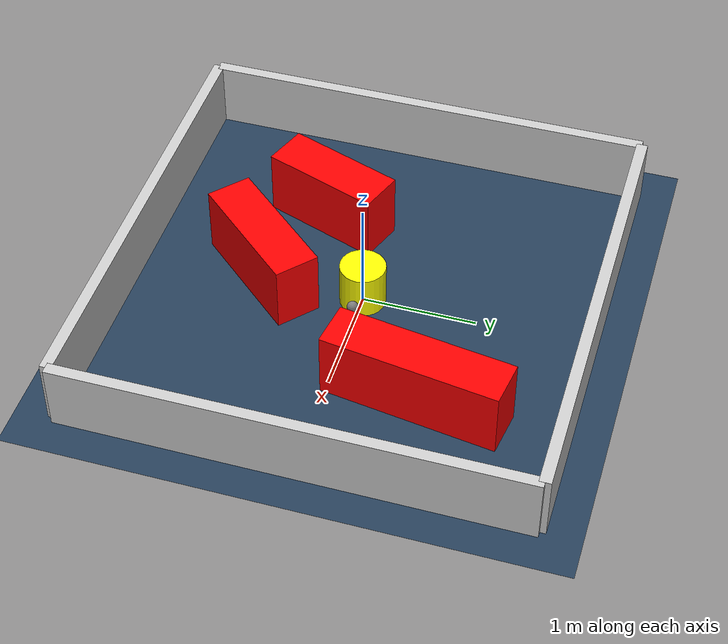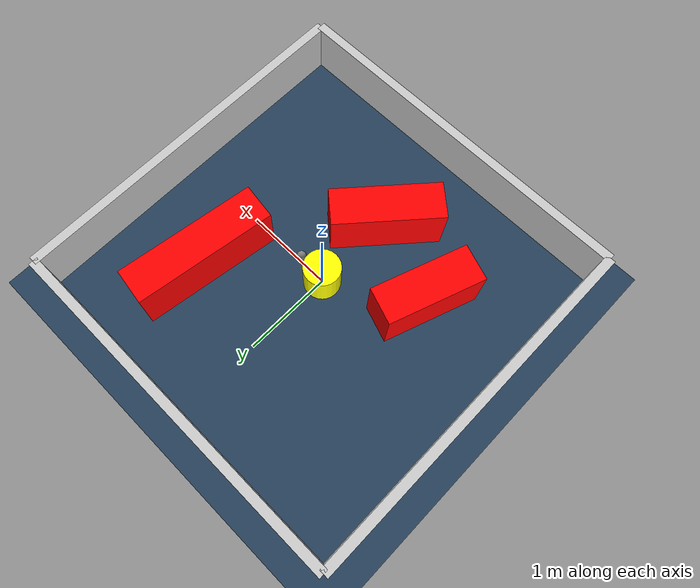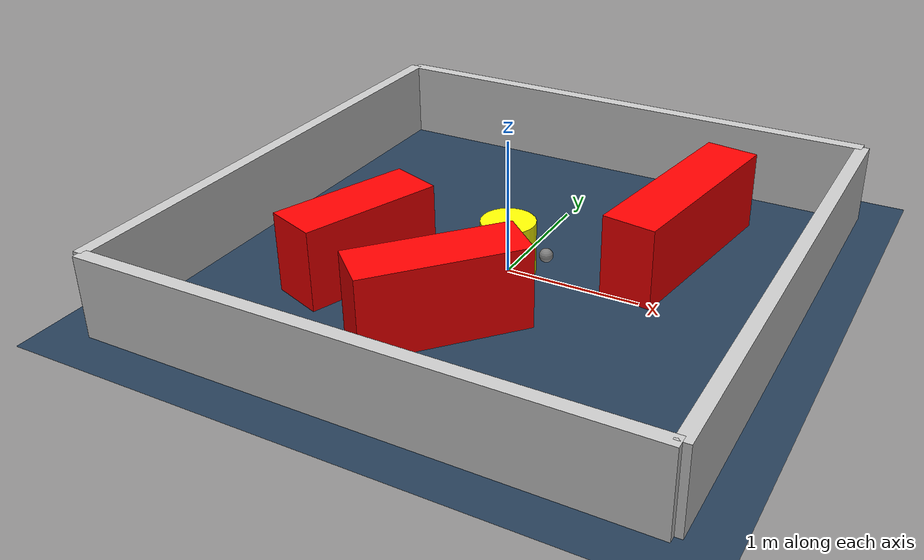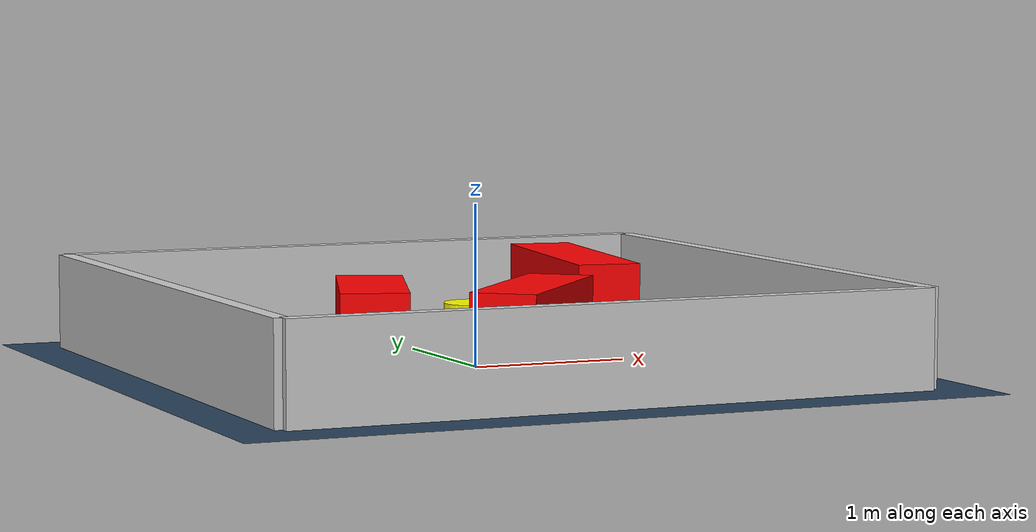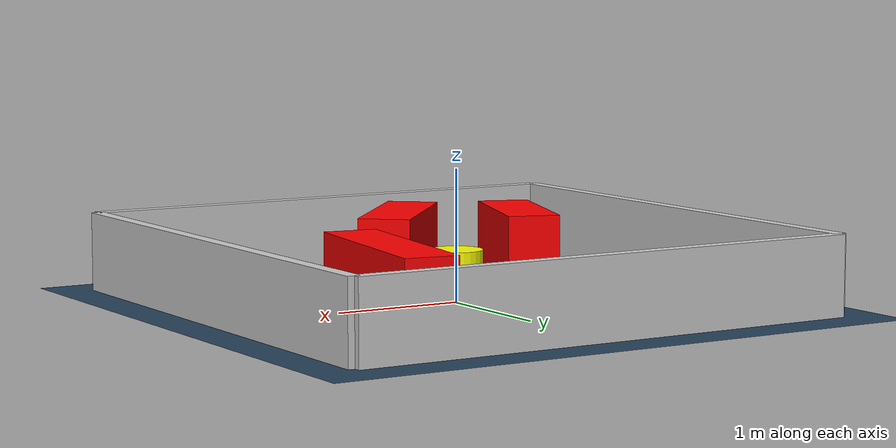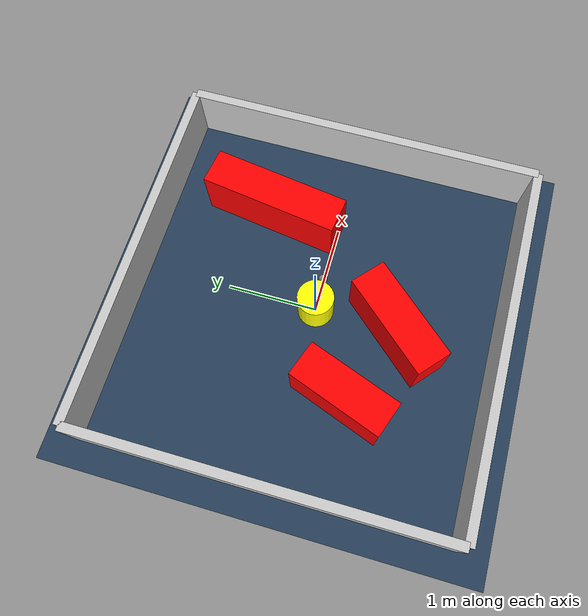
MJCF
<?xml version="1.0" ?>
<mujoco model="generated_environment">
  <option timestep="0.01" integrator="RK4" cone="elliptic"/>
  <default>
    <geom density="1"/>
  </default>
  <asset>
    <texture builtin="gradient" height="3072" rgb1="0.3 0.5 0.7" rgb2="0 0 0" type="skybox" width="512"/>
    <texture builtin="checker" height="300" mark="edge" markrgb="0.8 0.8 0.8" name="groundplane" rgb1="0.2 0.3 0.4" rgb2="0.1 0.2 0.3" type="2d" width="300"/>
    <material name="groundplane" reflectance="0.2" texrepeat="5 5" texture="groundplane" texuniform="true"/>
    <material name="robot" rgba="0.0 1.0 0.0 1"/>
  </asset>
  <worldbody>
    <light dir="0 0 -1" directional="true" pos="0 0 1.5"/>
    <geom condim="4" friction="1.0 0.005 0.001" material="groundplane" name="floor" size="0 0 0.05" type="plane"/>
    <body name="walls">
      <geom name="wall_1" condim="4" pos="-2.0 0.0 0.3" rgba="0.800000011920929 0.800000011920929 0.800000011920929 1.0" size="0.05 2.0 0.3" type="box"/>
      <geom name="wall_2" condim="4" pos="2.0 0.0 0.3" rgba="0.800000011920929 0.800000011920929 0.800000011920929 1.0" size="0.05 2.0 0.3" type="box"/>
      <geom name="wall_3" condim="4" pos="0.0 -2.0 0.3" rgba="0.800000011920929 0.800000011920929 0.800000011920929 1.0" size="2.0 0.05 0.3" type="box"/>
      <geom name="wall_4" condim="4" pos="0.0 2.0 0.3" rgba="0.800000011920929 0.800000011920929 0.800000011920929 1.0" size="2.0 0.05 0.3" type="box"/>
    </body>
    <body name="robot">
      <joint name="joint_x" type="slide" pos="0 0 0" axis="1 0 0"/>
      <joint name="joint_y" type="slide" pos="0 0 0" axis="0 1 0"/>
      <geom name="robot" type="sphere" pos="0.3 0.0 0.2" size="0.05" mass="5." friction="1.0 0.005 0.0001" condim="4" rgba="0.5 0.5 0.5 1.0"/>
      <site name="sensor_ball"/>
    </body>
    <body name="obstacle_movable_1">
      <geom name="obstacle_movable_1" condim="4" pos="0.0 0.0 0.2" euler="0 0 0.0" friction="1.0 0.005 0.001" rgba="1.0 1.0 0.0 1.0" size="0.2 0.2 0.0" type="cylinder" mass="0.1"/>
      <joint type="free"/>
    </body>
    <body name="obstacle_2_static">
      <geom name="obstacle_2_static" condim="4" pos="1.015010988625606 0.7534929700973578 0.3" euler="0 0 261.5494712492041" friction="1.0 0.005 0.001" rgba="1 0 0 1" size="0.7710558538624075 0.2 0.3" type="box"/>
    </body>
    <body name="obstacle_3_static">
      <geom name="obstacle_3_static" condim="4" pos="-0.035671331812187956 -0.9043940424825694 0.3" euler="0 0 228.52591560592387" friction="1.0 0.005 0.001" rgba="1 0 0 1" size="0.5896792365663461 0.2 0.3" type="box"/>
    </body>
    <body name="obstacle_4_static">
      <geom name="obstacle_4_static" condim="4" pos="-0.9054202863305045 -0.5474030142427302 0.3" euler="0 0 70.15211556625036" friction="1.0 0.005 0.001" rgba="1 0 0 1" size="0.5326417079122073 0.2 0.3" type="box"/>
    </body>
  </worldbody>
  <actuator>
    <motor name="actuator_x" joint="joint_x" gear="1" ctrlrange="-1 1"/>
    <motor name="actuator_y" joint="joint_y" gear="1" ctrlrange="-1 1"/>
  </actuator>
</mujoco>
